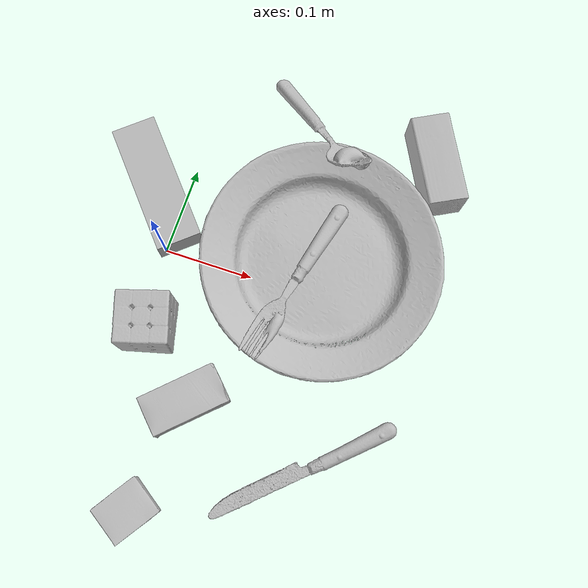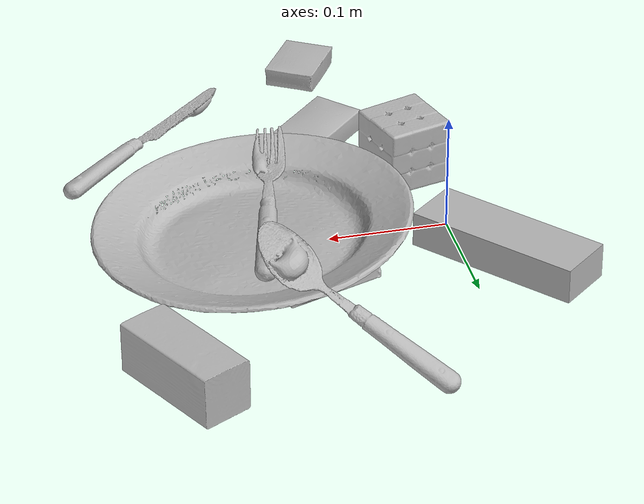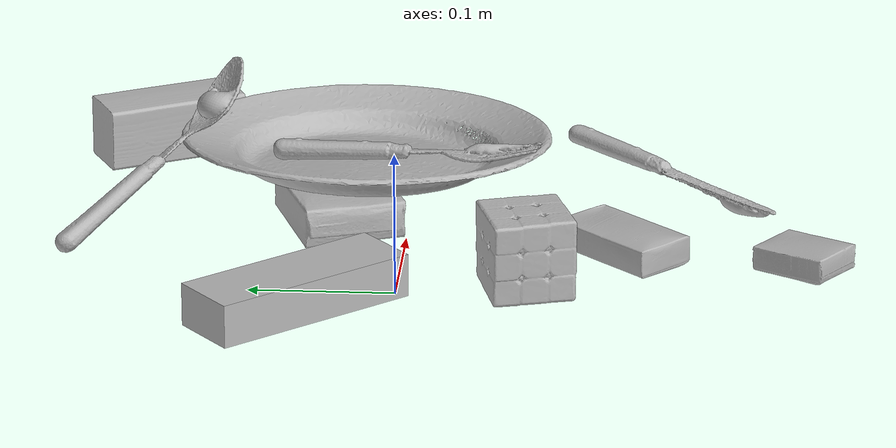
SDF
<sdf version="1.4">
  <world name="default">
    <light name="light1" type="point">
      <pose>0 0 1 0 0 0</pose>
      <diffuse>3 3 3 1</diffuse>
      <specular>3 3 3 1</specular>
    </light>
    <light name="light2" type="point">
      <pose>0 0.5 2 0 0 0</pose>
      <diffuse>1 1 1 1</diffuse>
      <specular>1 1 1 1</specular>
    </light>
    <light name="light3" type="point">
      <pose>0 0.5 2 0 0 0</pose>
      <diffuse>3 3 3 1</diffuse>
      <specular>3 3 3 1</specular>
    </light>
    <scene>
      <ambient>0.7 0.7 0.7</ambient>
    </scene>
    <model name="box11">
      <link name="link_box11">
        <collision name="default">
          <geometry>
            <mesh>
              <uri>model://jenga/collision_meshes/collision.obj</uri>
              <scale>1.0 1.0 1.0</scale>
            </mesh>
          </geometry>
          <surface>
            <friction>
              <ode>
                <mu>0.5</mu>
                <mu2>0.5</mu2>
              </ode>
            </friction>
          <contact>
        <ode>
            <max_vel>0</max_vel>
            <min_depth>0.0001</min_depth>
            <kp>1e8</kp>
        </ode>
    </contact></surface>
        </collision>
        <visual name="default">
          <geometry>
            <mesh>
              <uri>model://jenga/visual_meshes/visual.dae</uri>
              <scale>1.0 1.0 1.0</scale>
            </mesh>
          </geometry>
        </visual>
        <inertial>
          <mass>0.24099597334861755</mass>
          <pose>-2.502855807051674e-07 -0.00010250010382151231 -4.0923401684267446e-05 0.0 -7.34215461761844e-07 0.0</pose>
          <inertia>
            <ixx>6.668944e-05</ixx>
            <iyy>0.0004518858</iyy>
            <izz>0.00048242652</izz>
            <ixy>0</ixy>
            <ixz>0</ixz>
            <iyz>0</iyz>
          </inertia>
        </inertial>
      </link>
      <pose>-0.032966919243335724 0.0638643428683281 0.014999997802078724 -4.085162188865324e-09 -4.505778783762096e-10 -0.857664017524985</pose>
    </model>
    <model name="box12">
      <link name="link_box12">
        <collision name="default">
          <geometry>
            <mesh>
              <uri>model://wood_block/collision_meshes/collision.obj</uri>
              <scale>0.5 0.5 0.5</scale>
            </mesh>
          </geometry>
          <surface>
            <friction>
              <ode>
                <mu>0.5</mu>
                <mu2>0.5</mu2>
              </ode>
            </friction>
          <contact>
        <ode>
            <max_vel>0</max_vel>
            <min_depth>0.0001</min_depth>
            <kp>1e8</kp>
        </ode>
    </contact></surface>
        </collision>
        <visual name="default">
          <geometry>
            <mesh>
              <uri>model://wood_block/visual_meshes/visual.dae</uri>
              <scale>0.5 0.5 0.5</scale>
            </mesh>
          </geometry>
        </visual>
        <inertial>
          <mass>0.14152581989765167</mass>
          <pose>-2.9066577553749084e-06 -0.000285404734313488 0.00013204291462898254 -0.05220812938960465 -0.005192695343712196 -0.006861377662393293</pose>
          <inertia>
            <ixx>4.7345737e-05</ixx>
            <iyy>0.0001495652</iyy>
            <izz>0.00014900575</izz>
            <ixy>0</ixy>
            <ixz>0</ixz>
            <iyz>0</iyz>
          </inertia>
        </inertial>
      </link>
      <pose>0.25706982612609863 0.18451383709907532 0.02262926660478115 -0.005208381931966847 0.005718791627153066 -1.0865417236855452</pose>
    </model>
    <model name="box13">
      <link name="link_box13">
        <collision name="default">
          <geometry>
            <mesh>
              <uri>model://sugar_box/collision_meshes/collision.obj</uri>
              <scale>0.5 0.5 0.5</scale>
            </mesh>
          </geometry>
          <surface>
            <friction>
              <ode>
                <mu>0.5</mu>
                <mu2>0.5</mu2>
              </ode>
            </friction>
          <contact>
        <ode>
            <max_vel>0</max_vel>
            <min_depth>0.0001</min_depth>
            <kp>1e8</kp>
        </ode>
    </contact></surface>
        </collision>
        <visual name="default">
          <geometry>
            <mesh>
              <uri>model://sugar_box/visual_meshes/visual.dae</uri>
              <scale>0.5 0.5 0.5</scale>
            </mesh>
          </geometry>
        </visual>
        <inertial>
          <mass>0.08336380124092102</mass>
          <pose>0.0005171863595023751 1.924554817378521e-05 -0.00018182402709499002 -0.0004046263001201691 0.0010506636386254094 0.0026153790217303746</pose>
          <inertia>
            <ixx>1.7364619e-05</ixx>
            <iyy>5.612603e-05</iyy>
            <izz>6.718955e-05</izz>
            <ixy>0</ixy>
            <ixz>0</ixz>
            <iyz>0</iyz>
          </inertia>
        </inertial>
      </link>
      <pose>0.0785294622182846 -0.151097372174263 0.011399298906326294 0.0007756992655320754 -0.023432916746494042 -2.373120433922785</pose>
    </model>
    <model name="box21">
      <link name="link_box21">
        <collision name="default">
          <geometry>
            <mesh>
              <uri>model://pudding_box/collision_meshes/collision.obj</uri>
              <scale>0.5 0.5 0.5</scale>
            </mesh>
          </geometry>
          <surface>
            <friction>
              <ode>
                <mu>0.5</mu>
                <mu2>0.5</mu2>
              </ode>
            </friction>
          <contact>
        <ode>
            <max_vel>0</max_vel>
            <min_depth>0.0001</min_depth>
            <kp>1e8</kp>
        </ode>
    </contact></surface>
        </collision>
        <visual name="default">
          <geometry>
            <mesh>
              <uri>model://pudding_box/visual_meshes/visual.dae</uri>
              <scale>0.5 0.5 0.5</scale>
            </mesh>
          </geometry>
        </visual>
        <inertial>
          <mass>0.025778822600841522</mass>
          <pose>0.00024474109522998333 0.00040339428232982755 -0.0002594413817860186 0.005213100851918505 -0.006603799640504885 0.02007982516037135</pose>
          <inertia>
            <ixx>7.285408e-06</ixx>
            <iyy>4.901674e-06</iyy>
            <izz>1.07588085e-05</izz>
            <ixy>0</ixy>
            <ixz>0</ixz>
            <iyz>0</iyz>
          </inertia>
        </inertial>
      </link>
      <pose>0.06118260324001312 -0.27500635385513306 0.009862901642918587 0.022348344616939603 -0.01139182188871638 2.554286533457829</pose>
    </model>
    <model name="box22">
      <link name="link_box22">
        <collision name="default">
          <geometry>
            <mesh>
              <uri>model://rubiks_cube/collision_meshes/collision.obj</uri>
              <scale>1.0 1.0 1.0</scale>
            </mesh>
          </geometry>
          <surface>
            <friction>
              <ode>
                <mu>0.5</mu>
                <mu2>0.5</mu2>
              </ode>
            </friction>
          <contact>
        <ode>
            <max_vel>0</max_vel>
            <min_depth>0.0001</min_depth>
            <kp>1e8</kp>
        </ode>
    </contact></surface>
        </collision>
        <visual name="default">
          <geometry>
            <mesh>
              <uri>model://rubiks_cube/visual_meshes/visual.dae</uri>
              <scale>1.0 1.0 1.0</scale>
            </mesh>
          </geometry>
        </visual>
        <inertial>
          <mass>0.22147096693515778</mass>
          <pose>2.6721041649580002e-05 5.256967051536776e-05 -7.264316082000732e-06 -0.05467273282600652 -0.09814100107642566 -0.034457018786431724</pose>
          <inertia>
            <ixx>0.00012237758</ixx>
            <iyy>0.00012180688</iyy>
            <izz>0.00012339167</izz>
            <ixy>0</ixy>
            <ixz>0</ixz>
            <iyz>0</iyz>
          </inertia>
        </inertial>
      </link>
      <pose>0.013666285201907158 -0.08749933540821075 0.028678948059678078 -3.6884303064466372e-06 -1.4234959093797544e-06 1.8631422914500249</pose>
    </model>
    <model name="box23">
      <link name="link_box23">
        <collision name="default">
          <geometry>
            <mesh>
              <uri>model://gelatin_box/collision_meshes/collision.obj</uri>
              <scale>1.0 1.0 1.0</scale>
            </mesh>
          </geometry>
          <surface>
            <friction>
              <ode>
                <mu>0.5</mu>
                <mu2>0.5</mu2>
              </ode>
            </friction>
          <contact>
        <ode>
            <max_vel>0</max_vel>
            <min_depth>0.0001</min_depth>
            <kp>1e8</kp>
        </ode>
    </contact></surface>
        </collision>
        <visual name="default">
          <geometry>
            <mesh>
              <uri>model://gelatin_box/visual_meshes/visual.dae</uri>
              <scale>1.0 1.0 1.0</scale>
            </mesh>
          </geometry>
        </visual>
        <inertial>
          <mass>0.20053431391716003</mass>
          <pose>0.0004319618456065655 0.00011156871914863586 -0.00036403207923285663 -0.001050372330881514 -0.004755818219920532 0.016440563197859918</pose>
          <inertia>
            <ixx>0.00014156084</ixx>
            <iyy>0.00010111618</iyy>
            <izz>0.00021548718</izz>
            <ixy>0</ixy>
            <ixz>0</ixz>
            <iyz>0</iyz>
          </inertia>
        </inertial>
      </link>
      <pose>0.12546220421791077 0.048682477325201035 0.015432345680892467 -0.006911159101131197 0.01313470380481008 -1.2246798974317739</pose>
    </model>
    <model name="plate1">
      <link name="link_plate1">
        <collision name="default">
          <geometry>
            <mesh>
              <uri>model://plate/collision_meshes/collision.obj</uri>
              <scale>1.0 1.0 1.0</scale>
            </mesh>
          </geometry>
          <surface>
            <friction>
              <ode>
                <mu>0.5</mu>
                <mu2>0.5</mu2>
              </ode>
            </friction>
          <contact>
        <ode>
            <max_vel>0</max_vel>
            <min_depth>0.0001</min_depth>
            <kp>1e8</kp>
        </ode>
    </contact></surface>
        </collision>
        <visual name="default">
          <geometry>
            <mesh>
              <uri>model://plate/visual_meshes/visual.dae</uri>
              <scale>1.0 1.0 1.0</scale>
            </mesh>
          </geometry>
        </visual>
        <inertial>
          <mass>0.1705944687128067</mass>
          <pose>-0.0006044638575986028 0.0002782570372801274 -0.0010561983799561858 0.002218806973518856 -0.003225464946202784 0.4526031622217862</pose>
          <inertia>
            <ixx>0.0007980444</ixx>
            <iyy>0.0007904114</iyy>
            <izz>0.0015608557</izz>
            <ixy>0</ixy>
            <ixz>0</ixz>
            <iyz>0</iyz>
          </inertia>
        </inertial>
      </link>
      <pose>0.17067597806453705 0.033310405910015106 0.039883315563201904 -0.018040128153022444 -0.08684152194552296 -3.047677879429275</pose>
    </model>
    <model name="silverware1">
      <link name="link_silverware1">
        <collision name="default">
          <geometry>
            <mesh>
              <uri>model://fork/collision_meshes/collision.obj</uri>
              <scale>1.0 1.0 1.0</scale>
            </mesh>
          </geometry>
          <surface>
            <friction>
              <ode>
                <mu>0.5</mu>
                <mu2>0.5</mu2>
              </ode>
            </friction>
          <contact>
        <ode>
            <max_vel>0</max_vel>
            <min_depth>0.0001</min_depth>
            <kp>1e8</kp>
        </ode>
    </contact></surface>
        </collision>
        <visual name="default">
          <geometry>
            <mesh>
              <uri>model://fork/visual_meshes/visual.dae</uri>
              <scale>1.0 1.0 1.0</scale>
            </mesh>
          </geometry>
        </visual>
        <inertial>
          <mass>0.02693658135831356</mass>
          <pose>-0.02957003191113472 0.00046588244731538 0.0003218860365450382 -0.013551533598057301 -0.010977833518912038 0.014453896181446386</pose>
          <inertia>
            <ixx>9.442797e-07</ixx>
            <iyy>7.032368e-05</iyy>
            <izz>7.074603e-05</izz>
            <ixy>0</ixy>
            <ixz>0</ixz>
            <iyz>0</iyz>
          </inertia>
        </inertial>
      </link>
      <pose>0.15152019262313843 0.0042677875608205795 0.044783685356378555 -0.021744784028001146 -0.08031971129346115 -1.807442943085478</pose>
    </model>
    <model name="silverware2">
      <link name="link_silverware2">
        <collision name="default">
          <geometry>
            <mesh>
              <uri>model://knife/collision_meshes/collision.obj</uri>
              <scale>1.0 1.0 1.0</scale>
            </mesh>
          </geometry>
          <surface>
            <friction>
              <ode>
                <mu>0.5</mu>
                <mu2>0.5</mu2>
              </ode>
            </friction>
          <contact>
        <ode>
            <max_vel>0</max_vel>
            <min_depth>0.0001</min_depth>
            <kp>1e8</kp>
        </ode>
    </contact></surface>
        </collision>
        <visual name="default">
          <geometry>
            <mesh>
              <uri>model://knife/visual_meshes/visual.dae</uri>
              <scale>1.0 1.0 1.0</scale>
            </mesh>
          </geometry>
        </visual>
        <inertial>
          <mass>0.029087698087096214</mass>
          <pose>-0.023785242810845375 0.0015275123296305537 5.0620237743714824e-05 0.07305335090844457 0.017248415402536993 -0.007409830271159857</pose>
          <inertia>
            <ixx>8.256269e-07</ixx>
            <iyy>0.00011175022</iyy>
            <izz>0.00011201614</izz>
            <ixy>0</ixy>
            <ixz>0</ixz>
            <iyz>0</iyz>
          </inertia>
        </inertial>
      </link>
      <pose>0.21951130032539368 -0.17914000153541565 0.008136843331158161 -0.28172669104923864 -0.00887202725565504 -2.393483283444476</pose>
    </model>
    <model name="silverware3">
      <link name="link_silverware3">
        <collision name="default">
          <geometry>
            <mesh>
              <uri>model://spoon/collision_meshes/collision.obj</uri>
              <scale>1.0 1.0 1.0</scale>
            </mesh>
          </geometry>
          <surface>
            <friction>
              <ode>
                <mu>0.5</mu>
                <mu2>0.5</mu2>
              </ode>
            </friction>
          <contact>
        <ode>
            <max_vel>0</max_vel>
            <min_depth>0.0001</min_depth>
            <kp>1e8</kp>
        </ode>
    </contact></surface>
        </collision>
        <visual name="default">
          <geometry>
            <mesh>
              <uri>model://spoon/visual_meshes/visual.dae</uri>
              <scale>1.0 1.0 1.0</scale>
            </mesh>
          </geometry>
        </visual>
        <inertial>
          <mass>0.04163059964776039</mass>
          <pose>-0.005526324268430471 -0.001603418029844761 -0.0007271656068041921 0.035215733596471024 -0.03906582179646946 0.006150610371924991</pose>
          <inertia>
            <ixx>2.3155617e-06</ixx>
            <iyy>0.00015840305</iyy>
            <izz>0.00015954502</izz>
            <ixy>0</ixy>
            <ixz>0</ixz>
            <iyz>0</iyz>
          </inertia>
        </inertial>
      </link>
      <pose>0.12271308153867722 0.17808212339878082 0.04695061966776848 -0.303745411478092 -0.4319766465669981 -0.749387984551789</pose>
    </model>
  <physics type="ode">
      <max_contacts>50</max_contacts>
      <ode>
        <solver>
          <type>quick</type>
          <iters>75</iters>
        </solver>
        <constraints>
          <contact_max_correcting_vel>0</contact_max_correcting_vel>
          <contact_surface_layer>0</contact_surface_layer>
        </constraints>
      </ode>
    </physics></world>
</sdf>
